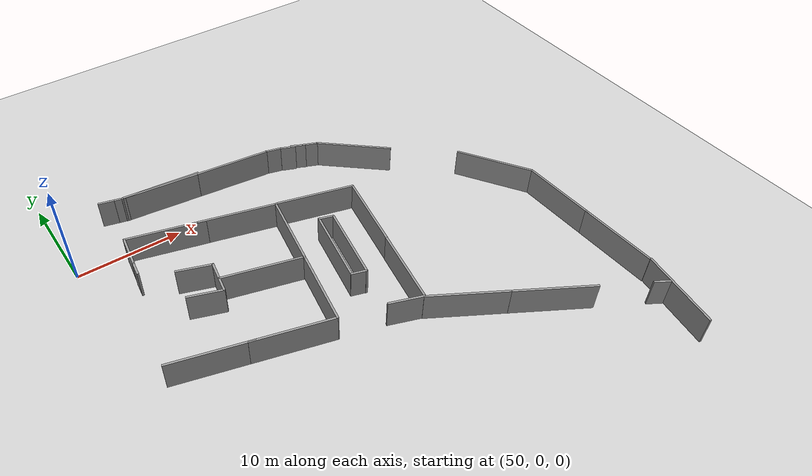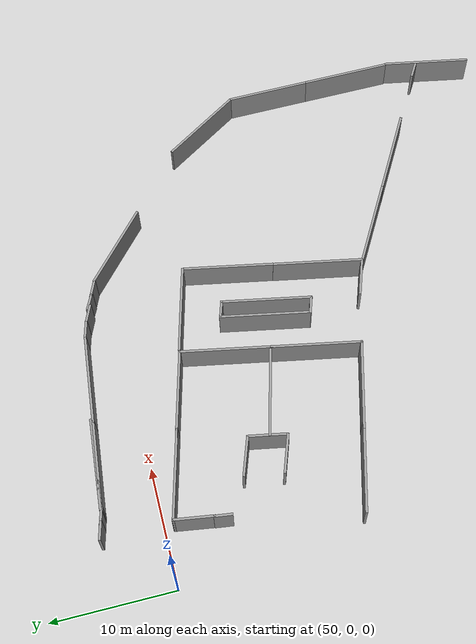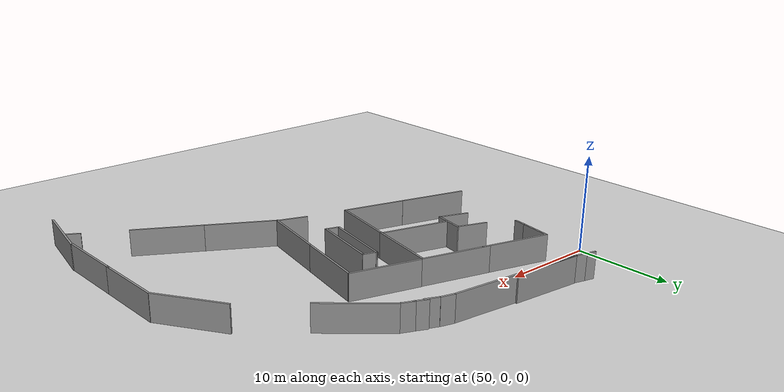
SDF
<sdf version="1.7">
 <world name="default">
  <model name="ground_plane">
   <static>1</static>
   <link name="link">
    <collision name="collision">
     <geometry><plane><normal>0 0 1</normal><size>100 100</size></plane></geometry>
     <surface>
      <contact><collide_bitmask>65535</collide_bitmask></contact>
      <friction><ode><mu>100</mu><mu2>50</mu2></ode></friction>
     </surface>
    </collision>
    <visual name="visual">
     <cast_shadows>0</cast_shadows>
     <geometry><plane><normal>0 0 1</normal><size>100 100</size></plane></geometry>
     <material>
      <script><uri>file://media/materials/scripts/gazebo.material</uri><name>Gazebo/Grey</name></script>
     </material>
    </visual>
   </link>
  </model>
  <model name="grey_wall_0_clone_0_clone_clone_clone_0_clone_clone_0_clone_2_clone_clone_clone_0_clone_4_clone">
   <static>1</static>
   <link name="link">
    <pose>0 0 1.4 0 -0 0</pose>
    <collision name="collision"><geometry><box><size>7.5 0.2 2.8</size></box></geometry></collision>
    <visual name="visual">
     <cast_shadows>0</cast_shadows>
     <geometry><box><size>7.5 0.2 2.8</size></box></geometry>
     <material>
      <script>
       <uri>model://grey_wall/materials/scripts</uri>
       <uri>model://grey_wall/materials/textures</uri>
       <name>vrc/grey_wall</name>
      </script>
     </material>
    </visual>
   </link>
   <pose>90.8186 -32.1764 0 0 -0 1.38847</pose>
  </model>
  <model name="grey_wall_0_clone_0_clone_clone_clone_0_clone_clone_0_clone_2_clone_clone_clone_0_clone_4_clone_clone_clone">
   <static>1</static>
   <link name="link">
    <pose>0 0 1.4 0 -0 0</pose>
    <collision name="collision"><geometry><box><size>7.5 0.2 2.8</size></box></geometry></collision>
    <visual name="visual">
     <cast_shadows>0</cast_shadows>
     <geometry><box><size>7.5 0.2 2.8</size></box></geometry>
     <material>
      <script>
       <uri>model://grey_wall/materials/scripts</uri>
       <uri>model://grey_wall/materials/textures</uri>
       <name>vrc/grey_wall</name>
      </script>
     </material>
    </visual>
   </link>
   <pose>91.2255 -17.7206 0 0 -0 1.59016</pose>
  </model>
  <model name="grey_wall_0_clone_0_clone_clone_clone_0_clone_clone_0_clone_2_clone_clone_clone_0_clone_4_clone_clone_clone_clone">
   <static>1</static>
   <link name="link">
    <pose>0 0 1.4 0 -0 0</pose>
    <collision name="collision"><geometry><box><size>7.5 0.2 2.8</size></box></geometry></collision>
    <visual name="visual">
     <cast_shadows>0</cast_shadows>
     <geometry><box><size>7.5 0.2 2.8</size></box></geometry>
     <material>
      <script>
       <uri>model://grey_wall/materials/scripts</uri>
       <uri>model://grey_wall/materials/textures</uri>
       <name>vrc/grey_wall</name>
      </script>
     </material>
    </visual>
   </link>
   <pose>89.0832 -10.9202 0 0 -0 2.15439</pose>
  </model>
  <model name="grey_wall_clone_3_clone_0_clone_1">
   <static>1</static>
   <link name="link">
    <pose>0 0 1.4 0 -0 0</pose>
    <collision name="collision"><geometry><box><size>7.5 0.2 2.8</size></box></geometry></collision>
    <visual name="visual">
     <cast_shadows>0</cast_shadows>
     <geometry><box><size>7.5 0.2 2.8</size></box></geometry>
     <material>
      <script>
       <uri>model://grey_wall/materials/scripts</uri>
       <uri>model://grey_wall/materials/textures</uri>
       <name>vrc/grey_wall</name>
      </script>
     </material>
    </visual>
   </link>
   <pose>60.3633 3.96915 0 0 0 -0.103387</pose>
  </model>
  <model name="grey_wall_0_clone_0_clone_clone_clone_0_clone_clone_0_clone_2_clone_clone_clone_0_clone_4_clone_clone_clone_clone_0">
   <static>1</static>
   <link name="link">
    <pose>0 0 1.4 0 -0 0</pose>
    <collision name="collision"><geometry><box><size>7.5 0.2 2.8</size></box></geometry></collision>
    <visual name="visual">
     <cast_shadows>0</cast_shadows>
     <geometry><box><size>7.5 0.2 2.8</size></box></geometry>
     <material>
      <script>
       <uri>model://grey_wall/materials/scripts</uri>
       <uri>model://grey_wall/materials/textures</uri>
       <name>vrc/grey_wall</name>
      </script>
     </material>
    </visual>
   </link>
   <pose>91.359 -24.7823 0 0 -0 1.59016</pose>
  </model>
  <model name="grey_wall_clone_3_clone_0_clone_1_clone">
   <static>1</static>
   <link name="link">
    <pose>0 0 1.4 0 -0 0</pose>
    <collision name="collision"><geometry><box><size>7.5 0.2 2.8</size></box></geometry></collision>
    <visual name="visual">
     <cast_shadows>0</cast_shadows>
     <geometry><box><size>7.5 0.2 2.8</size></box></geometry>
     <material>
      <script>
       <uri>model://grey_wall/materials/scripts</uri>
       <uri>model://grey_wall/materials/textures</uri>
       <name>vrc/grey_wall</name>
      </script>
     </material>
    </visual>
   </link>
   <pose>67.6162 3.22221 0 0 0 -0.103387</pose>
  </model>
  <model name="half_grey_wall_clone_clone_clone_0_clone_clone_0_clone_clone_0_clone_0_clone_9_clone_0_clone_clone_clone_3_clone_clone_0_clone">
   <link name="link">
    <pose>0 0 1.4 0 -0 0</pose>
    <inertial>
     <mass>1</mass>
     <inertia><ixx>1</ixx><ixy>0</ixy><ixz>0</ixz><iyy>1</iyy><iyz>0</iyz><izz>1</izz></inertia>
    </inertial>
    <visual name="visual">
     <cast_shadows>0</cast_shadows>
     <geometry><box><size>1.5 0.2 2.8</size></box></geometry>
     <material>
      <script>
       <uri>model://grey_wall/materials/scripts</uri>
       <uri>model://grey_wall/materials/textures</uri>
       <name>vrc/grey_wall</name>
      </script>
      <shader type="pixel"><normal_map>__default__</normal_map></shader>
      <ambient>1 1 1 1</ambient>
      <diffuse>1 1 1 1</diffuse>
      <specular>0 0 0 1</specular>
      <emissive>0 0 0 1</emissive>
     </material>
    </visual>
    <collision name="collision">
     <geometry><box><size>1.5 0.2 2.8</size></box></geometry>
     <surface>
      <friction>
       <ode><mu>1</mu><mu2>1</mu2><fdir1>0 0 0</fdir1><slip1>0</slip1><slip2>0</slip2></ode>
       <torsional>
        <coefficient>1</coefficient>
        <patch_radius>0</patch_radius>
        <surface_radius>0</surface_radius>
        <use_patch_radius>1</use_patch_radius>
        <ode><slip>0</slip></ode>
       </torsional>
      </friction>
      <bounce><restitution_coefficient>0</restitution_coefficient><threshold>1e+06</threshold></bounce>
      <contact>
       <collide_without_contact>0</collide_without_contact>
       <collide_without_contact_bitmask>1</collide_without_contact_bitmask>
       <collide_bitmask>1</collide_bitmask>
       <ode>
        <soft_cfm>0</soft_cfm>
        <soft_erp>0.2</soft_erp>
        <kp>1e+13</kp>
        <kd>1</kd>
        <max_vel>0.01</max_vel>
        <min_depth>0</min_depth>
       </ode>
       <bullet>
        <split_impulse>1</split_impulse>
        <split_impulse_penetration_threshold>-0.01</split_impulse_penetration_threshold>
        <soft_cfm>0</soft_cfm>
        <soft_erp>0.2</soft_erp>
        <kp>1e+13</kp>
        <kd>1</kd>
       </bullet>
      </contact>
     </surface>
    </collision>
   </link>
   <static>1</static>
   <pose>72.0199 2.66243 0 0 -0 2.88811</pose>
  </model>
  <model name="half_grey_wall_clone_clone_clone_0_clone_clone_0_clone_clone_0_clone_0_clone_9_clone_0_clone_clone_clone_3_clone_clone_0_clone_0">
   <link name="link">
    <pose>0 0 1.4 0 -0 0</pose>
    <inertial>
     <mass>1</mass>
     <inertia><ixx>1</ixx><ixy>0</ixy><ixz>0</ixz><iyy>1</iyy><iyz>0</iyz><izz>1</izz></inertia>
    </inertial>
    <visual name="visual">
     <cast_shadows>0</cast_shadows>
     <geometry><box><size>1.5 0.2 2.8</size></box></geometry>
     <material>
      <script>
       <uri>model://grey_wall/materials/scripts</uri>
       <uri>model://grey_wall/materials/textures</uri>
       <name>vrc/grey_wall</name>
      </script>
      <shader type="pixel"><normal_map>__default__</normal_map></shader>
      <ambient>1 1 1 1</ambient>
      <diffuse>1 1 1 1</diffuse>
      <specular>0 0 0 1</specular>
      <emissive>0 0 0 1</emissive>
     </material>
    </visual>
    <collision name="collision">
     <geometry><box><size>1.5 0.2 2.8</size></box></geometry>
     <surface>
      <friction>
       <ode><mu>1</mu><mu2>1</mu2><fdir1>0 0 0</fdir1><slip1>0</slip1><slip2>0</slip2></ode>
       <torsional>
        <coefficient>1</coefficient>
        <patch_radius>0</patch_radius>
        <surface_radius>0</surface_radius>
        <use_patch_radius>1</use_patch_radius>
        <ode><slip>0</slip></ode>
       </torsional>
      </friction>
      <bounce><restitution_coefficient>0</restitution_coefficient><threshold>1e+06</threshold></bounce>
      <contact>
       <collide_without_contact>0</collide_without_contact>
       <collide_without_contact_bitmask>1</collide_without_contact_bitmask>
       <collide_bitmask>1</collide_bitmask>
       <ode>
        <soft_cfm>0</soft_cfm>
        <soft_erp>0.2</soft_erp>
        <kp>1e+13</kp>
        <kd>1</kd>
        <max_vel>0.01</max_vel>
        <min_depth>0</min_depth>
       </ode>
       <bullet>
        <split_impulse>1</split_impulse>
        <split_impulse_penetration_threshold>-0.01</split_impulse_penetration_threshold>
        <soft_cfm>0</soft_cfm>
        <soft_erp>0.2</soft_erp>
        <kp>1e+13</kp>
        <kd>1</kd>
       </bullet>
      </contact>
     </surface>
    </collision>
   </link>
   <static>1</static>
   <pose>73.4243 2.17542 0 0 -0 2.7466</pose>
  </model>
  <model name="half_grey_wall_clone_clone_clone_0_clone_clone_0_clone_clone_0_clone_0_clone_9_clone_0_clone_clone_clone_3_clone_clone_0_clone_0_clone">
   <link name="link">
    <pose>0 0 1.4 0 -0 0</pose>
    <inertial>
     <mass>1</mass>
     <inertia><ixx>1</ixx><ixy>0</ixy><ixz>0</ixz><iyy>1</iyy><iyz>0</iyz><izz>1</izz></inertia>
    </inertial>
    <visual name="visual">
     <cast_shadows>0</cast_shadows>
     <geometry><box><size>1.5 0.2 2.8</size></box></geometry>
     <material>
      <script>
       <uri>model://grey_wall/materials/scripts</uri>
       <uri>model://grey_wall/materials/textures</uri>
       <name>vrc/grey_wall</name>
      </script>
      <shader type="pixel"><normal_map>__default__</normal_map></shader>
      <ambient>1 1 1 1</ambient>
      <diffuse>1 1 1 1</diffuse>
      <specular>0 0 0 1</specular>
      <emissive>0 0 0 1</emissive>
     </material>
    </visual>
    <collision name="collision">
     <geometry><box><size>1.5 0.2 2.8</size></box></geometry>
     <surface>
      <friction>
       <ode><mu>1</mu><mu2>1</mu2><fdir1>0 0 0</fdir1><slip1>0</slip1><slip2>0</slip2></ode>
       <torsional>
        <coefficient>1</coefficient>
        <patch_radius>0</patch_radius>
        <surface_radius>0</surface_radius>
        <use_patch_radius>1</use_patch_radius>
        <ode><slip>0</slip></ode>
       </torsional>
      </friction>
      <bounce><restitution_coefficient>0</restitution_coefficient><threshold>1e+06</threshold></bounce>
      <contact>
       <collide_without_contact>0</collide_without_contact>
       <collide_without_contact_bitmask>1</collide_without_contact_bitmask>
       <collide_bitmask>1</collide_bitmask>
       <ode>
        <soft_cfm>0</soft_cfm>
        <soft_erp>0.2</soft_erp>
        <kp>1e+13</kp>
        <kd>1</kd>
        <max_vel>0.01</max_vel>
        <min_depth>0</min_depth>
       </ode>
       <bullet>
        <split_impulse>1</split_impulse>
        <split_impulse_penetration_threshold>-0.01</split_impulse_penetration_threshold>
        <soft_cfm>0</soft_cfm>
        <soft_erp>0.2</soft_erp>
        <kp>1e+13</kp>
        <kd>1</kd>
       </bullet>
      </contact>
     </surface>
    </collision>
   </link>
   <static>1</static>
   <pose>75.5411 1.41803 0 0 -0 2.7466</pose>
  </model>
  <model name="half_grey_wall_clone_clone_clone_0_clone_clone_0_clone_clone_0_clone_0_clone_9_clone_0_clone_2_clone_1">
   <link name="link">
    <pose>0 0 1.4 0 -0 0</pose>
    <inertial>
     <mass>1</mass>
     <inertia><ixx>1</ixx><ixy>0</ixy><ixz>0</ixz><iyy>1</iyy><iyz>0</iyz><izz>1</izz></inertia>
    </inertial>
    <visual name="visual">
     <cast_shadows>0</cast_shadows>
     <geometry><box><size>1.5 0.2 2.8</size></box></geometry>
     <material>
      <script>
       <uri>model://grey_wall/materials/scripts</uri>
       <uri>model://grey_wall/materials/textures</uri>
       <name>vrc/grey_wall</name>
      </script>
      <shader type="pixel"><normal_map>__default__</normal_map></shader>
      <ambient>1 1 1 1</ambient>
      <diffuse>1 1 1 1</diffuse>
      <specular>0 0 0 1</specular>
      <emissive>0 0 0 1</emissive>
     </material>
    </visual>
    <collision name="collision">
     <geometry><box><size>1.5 0.2 2.8</size></box></geometry>
     <surface>
      <friction>
       <ode><mu>1</mu><mu2>1</mu2><fdir1>0 0 0</fdir1><slip1>0</slip1><slip2>0</slip2></ode>
       <torsional>
        <coefficient>1</coefficient>
        <patch_radius>0</patch_radius>
        <surface_radius>0</surface_radius>
        <use_patch_radius>1</use_patch_radius>
        <ode><slip>0</slip></ode>
       </torsional>
      </friction>
      <bounce><restitution_coefficient>0</restitution_coefficient><threshold>1e+06</threshold></bounce>
      <contact>
       <collide_without_contact>0</collide_without_contact>
       <collide_without_contact_bitmask>1</collide_without_contact_bitmask>
       <collide_bitmask>1</collide_bitmask>
       <ode>
        <soft_cfm>0</soft_cfm>
        <soft_erp>0.2</soft_erp>
        <kp>1e+13</kp>
        <kd>1</kd>
        <max_vel>0.01</max_vel>
        <min_depth>0</min_depth>
       </ode>
       <bullet>
        <split_impulse>1</split_impulse>
        <split_impulse_penetration_threshold>-0.01</split_impulse_penetration_threshold>
        <soft_cfm>0</soft_cfm>
        <soft_erp>0.2</soft_erp>
        <kp>1e+13</kp>
        <kd>1</kd>
       </bullet>
      </contact>
     </surface>
    </collision>
   </link>
   <static>1</static>
   <pose>55.2455 4.73221 0 0 -0 2.88811</pose>
  </model>
  <model name="half_grey_wall_clone_clone_clone_0_clone_clone_0_clone_clone_0_clone_0_clone_9_clone_0_clone_2_clone_2">
   <link name="link">
    <pose>0 0 1.4 0 -0 0</pose>
    <inertial>
     <mass>1</mass>
     <inertia><ixx>1</ixx><ixy>0</ixy><ixz>0</ixz><iyy>1</iyy><iyz>0</iyz><izz>1</izz></inertia>
    </inertial>
    <visual name="visual">
     <cast_shadows>0</cast_shadows>
     <geometry><box><size>1.5 0.2 2.8</size></box></geometry>
     <material>
      <script>
       <uri>model://grey_wall/materials/scripts</uri>
       <uri>model://grey_wall/materials/textures</uri>
       <name>vrc/grey_wall</name>
      </script>
      <shader type="pixel"><normal_map>__default__</normal_map></shader>
      <ambient>1 1 1 1</ambient>
      <diffuse>1 1 1 1</diffuse>
      <specular>0 0 0 1</specular>
      <emissive>0 0 0 1</emissive>
     </material>
    </visual>
    <collision name="collision">
     <geometry><box><size>1.5 0.2 2.8</size></box></geometry>
     <surface>
      <friction>
       <ode><mu>1</mu><mu2>1</mu2><fdir1>0 0 0</fdir1><slip1>0</slip1><slip2>0</slip2></ode>
       <torsional>
        <coefficient>1</coefficient>
        <patch_radius>0</patch_radius>
        <surface_radius>0</surface_radius>
        <use_patch_radius>1</use_patch_radius>
        <ode><slip>0</slip></ode>
       </torsional>
      </friction>
      <bounce><restitution_coefficient>0</restitution_coefficient><threshold>1e+06</threshold></bounce>
      <contact>
       <collide_without_contact>0</collide_without_contact>
       <collide_without_contact_bitmask>1</collide_without_contact_bitmask>
       <collide_bitmask>1</collide_bitmask>
       <ode>
        <soft_cfm>0</soft_cfm>
        <soft_erp>0.2</soft_erp>
        <kp>1e+13</kp>
        <kd>1</kd>
        <max_vel>0.01</max_vel>
        <min_depth>0</min_depth>
       </ode>
       <bullet>
        <split_impulse>1</split_impulse>
        <split_impulse_penetration_threshold>-0.01</split_impulse_penetration_threshold>
        <soft_cfm>0</soft_cfm>
        <soft_erp>0.2</soft_erp>
        <kp>1e+13</kp>
        <kd>1</kd>
       </bullet>
      </contact>
     </surface>
    </collision>
   </link>
   <static>1</static>
   <pose>56.2905 4.46986 0 0 -0 2.88811</pose>
  </model>
  <model name="grey_wall_clone_3_clone_0_clone_1_clone_0_clone_clone_0_clone">
   <static>1</static>
   <link name="link">
    <pose>0 0 1.4 0 -0 0</pose>
    <collision name="collision"><geometry><box><size>7.5 0.2 2.8</size></box></geometry></collision>
    <visual name="visual">
     <cast_shadows>0</cast_shadows>
     <geometry><box><size>7.5 0.2 2.8</size></box></geometry>
     <material>
      <script>
       <uri>model://grey_wall/materials/scripts</uri>
       <uri>model://grey_wall/materials/textures</uri>
       <name>vrc/grey_wall</name>
      </script>
     </material>
    </visual>
   </link>
   <pose>58.2105 -1.7071 0 0 0 -0.25602</pose>
  </model>
  <model name="half_grey_wall_clone_clone_0_clone_clone_clone_clone_0_clone_0_clone_clone_1_clone_clone_clone_4_clone_clone">
   <link name="link">
    <pose>0 0 1.4 0 -0 0</pose>
    <inertial>
     <mass>1</mass>
     <inertia><ixx>1</ixx><ixy>0</ixy><ixz>0</ixz><iyy>1</iyy><iyz>0</iyz><izz>1</izz></inertia>
    </inertial>
    <visual name="visual">
     <cast_shadows>0</cast_shadows>
     <geometry><box><size>3.3 0.2 2.8</size></box></geometry>
     <material>
      <script>
       <uri>model://grey_wall/materials/scripts</uri>
       <uri>model://grey_wall/materials/textures</uri>
       <name>vrc/grey_wall</name>
      </script>
      <shader type="pixel"><normal_map>__default__</normal_map></shader>
      <ambient>1 1 1 1</ambient>
      <diffuse>1 1 1 1</diffuse>
      <specular>0 0 0 1</specular>
      <emissive>0 0 0 1</emissive>
     </material>
    </visual>
    <collision name="collision">
     <geometry><box><size>3.3 0.2 2.8</size></box></geometry>
     <surface>
      <friction>
       <ode><mu>1</mu><mu2>1</mu2><fdir1>0 0 0</fdir1><slip1>0</slip1><slip2>0</slip2></ode>
       <torsional>
        <coefficient>1</coefficient>
        <patch_radius>0</patch_radius>
        <surface_radius>0</surface_radius>
        <use_patch_radius>1</use_patch_radius>
        <ode><slip>0</slip></ode>
       </torsional>
      </friction>
      <bounce><restitution_coefficient>0</restitution_coefficient><threshold>1e+06</threshold></bounce>
      <contact>
       <collide_without_contact>0</collide_without_contact>
       <collide_without_contact_bitmask>1</collide_without_contact_bitmask>
       <collide_bitmask>1</collide_bitmask>
       <ode>
        <soft_cfm>0</soft_cfm>
        <soft_erp>0.2</soft_erp>
        <kp>1e+13</kp>
        <kd>1</kd>
        <max_vel>0.01</max_vel>
        <min_depth>0</min_depth>
       </ode>
       <bullet>
        <split_impulse>1</split_impulse>
        <split_impulse_penetration_threshold>-0.01</split_impulse_penetration_threshold>
        <soft_cfm>0</soft_cfm>
        <soft_erp>0.2</soft_erp>
        <kp>1e+13</kp>
        <kd>1</kd>
       </bullet>
      </contact>
     </surface>
    </collision>
   </link>
   <static>1</static>
   <pose>54.4482 -2.34776 0 0 0 -1.72081</pose>
  </model>
  <model name="grey_wall_clone_3_clone_0_clone_1_clone_0_clone_clone_0_clone_clone">
   <static>1</static>
   <link name="link">
    <pose>0 0 1.4 0 -0 0</pose>
    <collision name="collision"><geometry><box><size>7.5 0.2 2.8</size></box></geometry></collision>
    <visual name="visual">
     <cast_shadows>0</cast_shadows>
     <geometry><box><size>7.5 0.2 2.8</size></box></geometry>
     <material>
      <script>
       <uri>model://grey_wall/materials/scripts</uri>
       <uri>model://grey_wall/materials/textures</uri>
       <name>vrc/grey_wall</name>
      </script>
     </material>
    </visual>
   </link>
   <pose>64.694 -3.38854 0 0 0 -0.25602</pose>
  </model>
  <model name="grey_wall_0_clone_clone_clone_0_clone_clone_2_clone_1_clone_2_clone_1_clone_clone_clone">
   <static>1</static>
   <link name="link">
    <pose>0 0 1.4 0 -0 0</pose>
    <collision name="collision"><geometry><box><size>7.5 0.2 2.8</size></box></geometry></collision>
    <visual name="visual">
     <cast_shadows>0</cast_shadows>
     <geometry><box><size>7.5 0.2 2.8</size></box></geometry>
     <material>
      <script>
       <uri>model://grey_wall/materials/scripts</uri>
       <uri>model://grey_wall/materials/textures</uri>
       <name>vrc/grey_wall</name>
      </script>
     </material>
    </visual>
   </link>
   <pose>67.4799 -8.00441 0 0 -0 1.38237</pose>
  </model>
  <model name="grey_wall_0_clone_clone_clone_0_clone_clone_2_clone_1_clone_2_clone_1_clone_clone_clone_0">
   <static>1</static>
   <link name="link">
    <pose>0 0 1.4 0 -0 0</pose>
    <collision name="collision"><geometry><box><size>7.5 0.2 2.8</size></box></geometry></collision>
    <visual name="visual">
     <cast_shadows>0</cast_shadows>
     <geometry><box><size>7.5 0.2 2.8</size></box></geometry>
     <material>
      <script>
       <uri>model://grey_wall/materials/scripts</uri>
       <uri>model://grey_wall/materials/textures</uri>
       <name>vrc/grey_wall</name>
      </script>
     </material>
    </visual>
   </link>
   <pose>66.1158 -15.1386 0 0 -0 1.38237</pose>
  </model>
  <model name="grey_wall_clone_3_clone_0_clone_1_clone_0_clone_clone_0_clone_clone_0">
   <static>1</static>
   <link name="link">
    <pose>0 0 1.4 0 -0 0</pose>
    <collision name="collision"><geometry><box><size>7.5 0.2 2.8</size></box></geometry></collision>
    <visual name="visual">
     <cast_shadows>0</cast_shadows>
     <geometry><box><size>7.5 0.2 2.8</size></box></geometry>
     <material>
      <script>
       <uri>model://grey_wall/materials/scripts</uri>
       <uri>model://grey_wall/materials/textures</uri>
       <name>vrc/grey_wall</name>
      </script>
     </material>
    </visual>
   </link>
   <pose>61.814 -17.7979 0 0 0 -0.25602</pose>
  </model>
  <model name="grey_wall_clone_3_clone_0_clone_1_clone_0_clone_clone_0_clone_clone_1">
   <static>1</static>
   <link name="link">
    <pose>0 0 1.4 0 -0 0</pose>
    <collision name="collision"><geometry><box><size>7.5 0.2 2.8</size></box></geometry></collision>
    <visual name="visual">
     <cast_shadows>0</cast_shadows>
     <geometry><box><size>7.5 0.2 2.8</size></box></geometry>
     <material>
      <script>
       <uri>model://grey_wall/materials/scripts</uri>
       <uri>model://grey_wall/materials/textures</uri>
       <name>vrc/grey_wall</name>
      </script>
     </material>
    </visual>
   </link>
   <pose>55.22 -16.0677 0 0 0 -0.25602</pose>
  </model>
  <model name="grey_wall_clone_3_clone_0_clone_1_clone_0_clone_clone_0_clone_clone_2">
   <static>1</static>
   <link name="link">
    <pose>0 0 1.4 0 -0 0</pose>
    <collision name="collision"><geometry><box><size>7.5 0.2 2.8</size></box></geometry></collision>
    <visual name="visual">
     <cast_shadows>0</cast_shadows>
     <geometry><box><size>7.5 0.2 2.8</size></box></geometry>
     <material>
      <script>
       <uri>model://grey_wall/materials/scripts</uri>
       <uri>model://grey_wall/materials/textures</uri>
       <name>vrc/grey_wall</name>
      </script>
     </material>
    </visual>
   </link>
   <pose>63.0634 -10.5062 0 0 0 -0.25602</pose>
  </model>
  <model name="half_grey_wall_clone_clone_0_clone_clone_clone_clone_0_clone_0_clone_clone_1_clone_clone_clone_4_clone_clone_clone_0">
   <link name="link">
    <pose>0 0 1.4 0 -0 0</pose>
    <inertial>
     <mass>1</mass>
     <inertia><ixx>1</ixx><ixy>0</ixy><ixz>0</ixz><iyy>1</iyy><iyz>0</iyz><izz>1</izz></inertia>
    </inertial>
    <visual name="visual">
     <cast_shadows>0</cast_shadows>
     <geometry><box><size>3.3 0.2 2.8</size></box></geometry>
     <material>
      <script>
       <uri>model://grey_wall/materials/scripts</uri>
       <uri>model://grey_wall/materials/textures</uri>
       <name>vrc/grey_wall</name>
      </script>
      <shader type="pixel"><normal_map>__default__</normal_map></shader>
      <ambient>1 1 1 1</ambient>
      <diffuse>1 1 1 1</diffuse>
      <specular>0 0 0 1</specular>
      <emissive>0 0 0 1</emissive>
     </material>
    </visual>
    <collision name="collision">
     <geometry><box><size>3.3 0.2 2.8</size></box></geometry>
     <surface>
      <friction>
       <ode><mu>1</mu><mu2>1</mu2><fdir1>0 0 0</fdir1><slip1>0</slip1><slip2>0</slip2></ode>
       <torsional>
        <coefficient>1</coefficient>
        <patch_radius>0</patch_radius>
        <surface_radius>0</surface_radius>
        <use_patch_radius>1</use_patch_radius>
        <ode><slip>0</slip></ode>
       </torsional>
      </friction>
      <bounce><restitution_coefficient>0</restitution_coefficient><threshold>1e+06</threshold></bounce>
      <contact>
       <collide_without_contact>0</collide_without_contact>
       <collide_without_contact_bitmask>1</collide_without_contact_bitmask>
       <collide_bitmask>1</collide_bitmask>
       <ode>
        <soft_cfm>0</soft_cfm>
        <soft_erp>0.2</soft_erp>
        <kp>1e+13</kp>
        <kd>1</kd>
        <max_vel>0.01</max_vel>
        <min_depth>0</min_depth>
       </ode>
       <bullet>
        <split_impulse>1</split_impulse>
        <split_impulse_penetration_threshold>-0.01</split_impulse_penetration_threshold>
        <soft_cfm>0</soft_cfm>
        <soft_erp>0.2</soft_erp>
        <kp>1e+13</kp>
        <kd>1</kd>
       </bullet>
      </contact>
     </surface>
    </collision>
   </link>
   <static>1</static>
   <pose>59.5325 -9.37491 0 0 0 -1.75358</pose>
  </model>
  <model name="half_grey_wall_clone_clone_clone_0_clone_clone_0_clone_clone_0_clone_0_clone_13_clone_clone_0_clone_clone_clone">
   <link name="link">
    <pose>0 0 1.4 0 -0 0</pose>
    <inertial>
     <mass>1</mass>
     <inertia><ixx>1</ixx><ixy>0</ixy><ixz>0</ixz><iyy>1</iyy><iyz>0</iyz><izz>1</izz></inertia>
    </inertial>
    <visual name="visual">
     <cast_shadows>0</cast_shadows>
     <geometry><box><size>1.5 0.2 2.8</size></box></geometry>
     <material>
      <script>
       <uri>model://grey_wall/materials/scripts</uri>
       <uri>model://grey_wall/materials/textures</uri>
       <name>vrc/grey_wall</name>
      </script>
      <shader type="pixel"><normal_map>__default__</normal_map></shader>
      <ambient>1 1 1 1</ambient>
      <diffuse>1 1 1 1</diffuse>
      <specular>0 0 0 1</specular>
      <emissive>0 0 0 1</emissive>
     </material>
    </visual>
    <collision name="collision">
     <geometry><box><size>1.5 0.2 2.8</size></box></geometry>
     <surface>
      <friction>
       <ode><mu>1</mu><mu2>1</mu2><fdir1>0 0 0</fdir1><slip1>0</slip1><slip2>0</slip2></ode>
       <torsional>
        <coefficient>1</coefficient>
        <patch_radius>0</patch_radius>
        <surface_radius>0</surface_radius>
        <use_patch_radius>1</use_patch_radius>
        <ode><slip>0</slip></ode>
       </torsional>
      </friction>
      <bounce><restitution_coefficient>0</restitution_coefficient><threshold>1e+06</threshold></bounce>
      <contact>
       <collide_without_contact>0</collide_without_contact>
       <collide_without_contact_bitmask>1</collide_without_contact_bitmask>
       <collide_bitmask>1</collide_bitmask>
       <ode>
        <soft_cfm>0</soft_cfm>
        <soft_erp>0.2</soft_erp>
        <kp>1e+13</kp>
        <kd>1</kd>
        <max_vel>0.01</max_vel>
        <min_depth>0</min_depth>
       </ode>
       <bullet>
        <split_impulse>1</split_impulse>
        <split_impulse_penetration_threshold>-0.01</split_impulse_penetration_threshold>
        <soft_cfm>0</soft_cfm>
        <soft_erp>0.2</soft_erp>
        <kp>1e+13</kp>
        <kd>1</kd>
       </bullet>
      </contact>
     </surface>
    </collision>
   </link>
   <static>1</static>
   <pose>54.1033 -4.54702 0 0 -0 1.4396</pose>
  </model>
  <model name="half_grey_wall_clone_clone_0_clone_clone_clone_clone_0_clone_2_clone_clone_0_clone_clone_1_clone_1_clone">
   <link name="link">
    <pose>0 0 1.4 0 -0 0</pose>
    <inertial>
     <mass>1</mass>
     <inertia><ixx>1</ixx><ixy>0</ixy><ixz>0</ixz><iyy>1</iyy><iyz>0</iyz><izz>1</izz></inertia>
    </inertial>
    <visual name="visual">
     <cast_shadows>0</cast_shadows>
     <geometry><box><size>3.3 0.2 2.8</size></box></geometry>
     <material>
      <script>
       <uri>model://grey_wall/materials/scripts</uri>
       <uri>model://grey_wall/materials/textures</uri>
       <name>vrc/grey_wall</name>
      </script>
      <shader type="pixel"><normal_map>__default__</normal_map></shader>
      <ambient>1 1 1 1</ambient>
      <diffuse>1 1 1 1</diffuse>
      <specular>0 0 0 1</specular>
      <emissive>0 0 0 1</emissive>
     </material>
    </visual>
    <collision name="collision">
     <geometry><box><size>3.3 0.2 2.8</size></box></geometry>
     <surface>
      <friction>
       <ode><mu>1</mu><mu2>1</mu2><fdir1>0 0 0</fdir1><slip1>0</slip1><slip2>0</slip2></ode>
       <torsional>
        <coefficient>1</coefficient>
        <patch_radius>0</patch_radius>
        <surface_radius>0</surface_radius>
        <use_patch_radius>1</use_patch_radius>
        <ode><slip>0</slip></ode>
       </torsional>
      </friction>
      <bounce><restitution_coefficient>0</restitution_coefficient><threshold>1e+06</threshold></bounce>
      <contact>
       <collide_without_contact>0</collide_without_contact>
       <collide_without_contact_bitmask>1</collide_without_contact_bitmask>
       <collide_bitmask>1</collide_bitmask>
       <ode>
        <soft_cfm>0</soft_cfm>
        <soft_erp>0.2</soft_erp>
        <kp>1e+13</kp>
        <kd>1</kd>
        <max_vel>0.01</max_vel>
        <min_depth>0</min_depth>
       </ode>
       <bullet>
        <split_impulse>1</split_impulse>
        <split_impulse_penetration_threshold>-0.01</split_impulse_penetration_threshold>
        <soft_cfm>0</soft_cfm>
        <soft_erp>0.2</soft_erp>
        <kp>1e+13</kp>
        <kd>1</kd>
       </bullet>
      </contact>
     </surface>
    </collision>
   </link>
   <static>1</static>
   <pose>58.256 -7.31692 -0 0 -0 2.80915</pose>
  </model>
  <model name="half_grey_wall_clone_clone_0_clone_clone_clone_clone_0_clone_2_clone_clone_0_clone_clone_1_clone_1_clone_0">
   <link name="link">
    <pose>0 0 1.4 0 -0 0</pose>
    <inertial>
     <mass>1</mass>
     <inertia><ixx>1</ixx><ixy>0</ixy><ixz>0</ixz><iyy>1</iyy><iyz>0</iyz><izz>1</izz></inertia>
    </inertial>
    <visual name="visual">
     <cast_shadows>0</cast_shadows>
     <geometry><box><size>3.3 0.2 2.8</size></box></geometry>
     <material>
      <script>
       <uri>model://grey_wall/materials/scripts</uri>
       <uri>model://grey_wall/materials/textures</uri>
       <name>vrc/grey_wall</name>
      </script>
      <shader type="pixel"><normal_map>__default__</normal_map></shader>
      <ambient>1 1 1 1</ambient>
      <diffuse>1 1 1 1</diffuse>
      <specular>0 0 0 1</specular>
      <emissive>0 0 0 1</emissive>
     </material>
    </visual>
    <collision name="collision">
     <geometry><box><size>3.3 0.2 2.8</size></box></geometry>
     <surface>
      <friction>
       <ode><mu>1</mu><mu2>1</mu2><fdir1>0 0 0</fdir1><slip1>0</slip1><slip2>0</slip2></ode>
       <torsional>
        <coefficient>1</coefficient>
        <patch_radius>0</patch_radius>
        <surface_radius>0</surface_radius>
        <use_patch_radius>1</use_patch_radius>
        <ode><slip>0</slip></ode>
       </torsional>
      </friction>
      <bounce><restitution_coefficient>0</restitution_coefficient><threshold>1e+06</threshold></bounce>
      <contact>
       <collide_without_contact>0</collide_without_contact>
       <collide_without_contact_bitmask>1</collide_without_contact_bitmask>
       <collide_bitmask>1</collide_bitmask>
       <ode>
        <soft_cfm>0</soft_cfm>
        <soft_erp>0.2</soft_erp>
        <kp>1e+13</kp>
        <kd>1</kd>
        <max_vel>0.01</max_vel>
        <min_depth>0</min_depth>
       </ode>
       <bullet>
        <split_impulse>1</split_impulse>
        <split_impulse_penetration_threshold>-0.01</split_impulse_penetration_threshold>
        <soft_cfm>0</soft_cfm>
        <soft_erp>0.2</soft_erp>
        <kp>1e+13</kp>
        <kd>1</kd>
       </bullet>
      </contact>
     </surface>
    </collision>
   </link>
   <static>1</static>
   <pose>57.7335 -10.448 -0 0 -0 2.80915</pose>
  </model>
  <model name="grey_wall_clone_3_clone_0_clone_1_clone_0_clone_clone_0_clone_clone_clone">
   <static>1</static>
   <link name="link">
    <pose>0 0 1.4 0 -0 0</pose>
    <collision name="collision"><geometry><box><size>7.5 0.2 2.8</size></box></geometry></collision>
    <visual name="visual">
     <cast_shadows>0</cast_shadows>
     <geometry><box><size>7.5 0.2 2.8</size></box></geometry>
     <material>
      <script>
       <uri>model://grey_wall/materials/scripts</uri>
       <uri>model://grey_wall/materials/textures</uri>
       <name>vrc/grey_wall</name>
      </script>
     </material>
    </visual>
   </link>
   <pose>71.9531 -5.24141 0 0 0 -0.25602</pose>
  </model>
  <model name="grey_wall_0_clone_clone_clone_0_clone_clone_2_clone_1_clone_2_clone_1_clone_clone_clone_clone">
   <static>1</static>
   <link name="link">
    <pose>0 0 1.4 0 -0 0</pose>
    <collision name="collision"><geometry><box><size>7.5 0.2 2.8</size></box></geometry></collision>
    <visual name="visual">
     <cast_shadows>0</cast_shadows>
     <geometry><box><size>7.5 0.2 2.8</size></box></geometry>
     <material>
      <script>
       <uri>model://grey_wall/materials/scripts</uri>
       <uri>model://grey_wall/materials/textures</uri>
       <name>vrc/grey_wall</name>
      </script>
     </material>
    </visual>
   </link>
   <pose>74.7918 -9.89913 0 0 -0 1.38237</pose>
  </model>
  <model name="grey_wall_0_clone_clone_clone_0_clone_clone_2_clone_1_clone_2_clone_1_clone_clone_clone_clone_0">
   <static>1</static>
   <link name="link">
    <pose>0 0 1.4 0 -0 0</pose>
    <collision name="collision"><geometry><box><size>7.5 0.2 2.8</size></box></geometry></collision>
    <visual name="visual">
     <cast_shadows>0</cast_shadows>
     <geometry><box><size>7.5 0.2 2.8</size></box></geometry>
     <material>
      <script>
       <uri>model://grey_wall/materials/scripts</uri>
       <uri>model://grey_wall/materials/textures</uri>
       <name>vrc/grey_wall</name>
      </script>
     </material>
    </visual>
   </link>
   <pose>73.3771 -17.2525 0 0 -0 1.38237</pose>
  </model>
  <model name="half_grey_wall_clone_clone_0_clone_clone_clone_clone_0_clone_2_clone_clone_0_clone_clone_2">
   <link name="link">
    <pose>0 0 1.4 0 -0 0</pose>
    <inertial>
     <mass>1</mass>
     <inertia><ixx>1</ixx><ixy>0</ixy><ixz>0</ixz><iyy>1</iyy><iyz>0</iyz><izz>1</izz></inertia>
    </inertial>
    <visual name="visual">
     <cast_shadows>0</cast_shadows>
     <geometry><box><size>3.3 0.2 2.8</size></box></geometry>
     <material>
      <script>
       <uri>model://grey_wall/materials/scripts</uri>
       <uri>model://grey_wall/materials/textures</uri>
       <name>vrc/grey_wall</name>
      </script>
      <shader type="pixel"><normal_map>__default__</normal_map></shader>
      <ambient>1 1 1 1</ambient>
      <diffuse>1 1 1 1</diffuse>
      <specular>0 0 0 1</specular>
      <emissive>0 0 0 1</emissive>
     </material>
    </visual>
    <collision name="collision">
     <geometry><box><size>3.3 0.2 2.8</size></box></geometry>
     <surface>
      <friction>
       <ode><mu>1</mu><mu2>1</mu2><fdir1>0 0 0</fdir1><slip1>0</slip1><slip2>0</slip2></ode>
       <torsional>
        <coefficient>1</coefficient>
        <patch_radius>0</patch_radius>
        <surface_radius>0</surface_radius>
        <use_patch_radius>1</use_patch_radius>
        <ode><slip>0</slip></ode>
       </torsional>
      </friction>
      <bounce><restitution_coefficient>0</restitution_coefficient><threshold>1e+06</threshold></bounce>
      <contact>
       <collide_without_contact>0</collide_without_contact>
       <collide_without_contact_bitmask>1</collide_without_contact_bitmask>
       <collide_bitmask>1</collide_bitmask>
       <ode>
        <soft_cfm>0</soft_cfm>
        <soft_erp>0.2</soft_erp>
        <kp>1e+13</kp>
        <kd>1</kd>
        <max_vel>0.01</max_vel>
        <min_depth>0</min_depth>
       </ode>
       <bullet>
        <split_impulse>1</split_impulse>
        <split_impulse_penetration_threshold>-0.01</split_impulse_penetration_threshold>
        <soft_cfm>0</soft_cfm>
        <soft_erp>0.2</soft_erp>
        <kp>1e+13</kp>
        <kd>1</kd>
       </bullet>
      </contact>
     </surface>
    </collision>
   </link>
   <static>1</static>
   <pose>71.1775 -20.3614 -0 0 -0 2.80915</pose>
  </model>
  <model name="grey_wall_0_clone_clone_clone_0_clone_clone_2_clone_1_clone_2_clone_1_clone_clone_clone_0_clone">
   <static>1</static>
   <link name="link">
    <pose>0 0 1.4 0 -0 0</pose>
    <collision name="collision"><geometry><box><size>7.5 0.2 2.8</size></box></geometry></collision>
    <visual name="visual">
     <cast_shadows>0</cast_shadows>
     <geometry><box><size>7.5 0.2 2.8</size></box></geometry>
     <material>
      <script>
       <uri>model://grey_wall/materials/scripts</uri>
       <uri>model://grey_wall/materials/textures</uri>
       <name>vrc/grey_wall</name>
      </script>
     </material>
    </visual>
   </link>
   <pose>71.025 -12.2677 0 0 -0 1.38237</pose>
  </model>
  <model name="grey_wall_0_clone_clone_clone_0_clone_clone_2_clone_1_clone_2_clone_1_clone_clone_clone_0_clone_0">
   <static>1</static>
   <link name="link">
    <pose>0 0 1.4 0 -0 0</pose>
    <collision name="collision"><geometry><box><size>7.5 0.2 2.8</size></box></geometry></collision>
    <visual name="visual">
     <cast_shadows>0</cast_shadows>
     <geometry><box><size>7.5 0.2 2.8</size></box></geometry>
     <material>
      <script>
       <uri>model://grey_wall/materials/scripts</uri>
       <uri>model://grey_wall/materials/textures</uri>
       <name>vrc/grey_wall</name>
      </script>
     </material>
    </visual>
   </link>
   <pose>69.7415 -11.7922 0 0 -0 1.38237</pose>
  </model>
  <model name="half_grey_wall_clone_clone_clone_0_clone_clone_0_clone_clone_0_clone_0_clone_13_clone_clone_0_clone_clone_3">
   <link name="link">
    <pose>0 0 1.4 0 -0 0</pose>
    <inertial>
     <mass>1</mass>
     <inertia><ixx>1</ixx><ixy>0</ixy><ixz>0</ixz><iyy>1</iyy><iyz>0</iyz><izz>1</izz></inertia>
    </inertial>
    <visual name="visual">
     <cast_shadows>0</cast_shadows>
     <geometry><box><size>1.5 0.2 2.8</size></box></geometry>
     <material>
      <script>
       <uri>model://grey_wall/materials/scripts</uri>
       <uri>model://grey_wall/materials/textures</uri>
       <name>vrc/grey_wall</name>
      </script>
      <shader type="pixel"><normal_map>__default__</normal_map></shader>
      <ambient>1 1 1 1</ambient>
      <diffuse>1 1 1 1</diffuse>
      <specular>0 0 0 1</specular>
      <emissive>0 0 0 1</emissive>
     </material>
    </visual>
    <collision name="collision">
     <geometry><box><size>1.5 0.2 2.8</size></box></geometry>
     <surface>
      <friction>
       <ode><mu>1</mu><mu2>1</mu2><fdir1>0 0 0</fdir1><slip1>0</slip1><slip2>0</slip2></ode>
       <torsional>
        <coefficient>1</coefficient>
        <patch_radius>0</patch_radius>
        <surface_radius>0</surface_radius>
        <use_patch_radius>1</use_patch_radius>
        <ode><slip>0</slip></ode>
       </torsional>
      </friction>
      <bounce><restitution_coefficient>0</restitution_coefficient><threshold>1e+06</threshold></bounce>
      <contact>
       <collide_without_contact>0</collide_without_contact>
       <collide_without_contact_bitmask>1</collide_without_contact_bitmask>
       <collide_bitmask>1</collide_bitmask>
       <ode>
        <soft_cfm>0</soft_cfm>
        <soft_erp>0.2</soft_erp>
        <kp>1e+13</kp>
        <kd>1</kd>
        <max_vel>0.01</max_vel>
        <min_depth>0</min_depth>
       </ode>
       <bullet>
        <split_impulse>1</split_impulse>
        <split_impulse_penetration_threshold>-0.01</split_impulse_penetration_threshold>
        <soft_cfm>0</soft_cfm>
        <soft_erp>0.2</soft_erp>
        <kp>1e+13</kp>
        <kd>1</kd>
       </bullet>
      </contact>
     </surface>
    </collision>
   </link>
   <static>1</static>
   <pose>69.6733 -15.6365 0 0 0 -0.300678</pose>
  </model>
  <model name="half_grey_wall_clone_clone_clone_0_clone_clone_0_clone_clone_0_clone_0_clone_13_clone_clone_0_clone_clone_3_clone">
   <link name="link">
    <pose>0 0 1.4 0 -0 0</pose>
    <inertial>
     <mass>1</mass>
     <inertia><ixx>1</ixx><ixy>0</ixy><ixz>0</ixz><iyy>1</iyy><iyz>0</iyz><izz>1</izz></inertia>
    </inertial>
    <visual name="visual">
     <cast_shadows>0</cast_shadows>
     <geometry><box><size>1.5 0.2 2.8</size></box></geometry>
     <material>
      <script>
       <uri>model://grey_wall/materials/scripts</uri>
       <uri>model://grey_wall/materials/textures</uri>
       <name>vrc/grey_wall</name>
      </script>
      <shader type="pixel"><normal_map>__default__</normal_map></shader>
      <ambient>1 1 1 1</ambient>
      <diffuse>1 1 1 1</diffuse>
      <specular>0 0 0 1</specular>
      <emissive>0 0 0 1</emissive>
     </material>
    </visual>
    <collision name="collision">
     <geometry><box><size>1.5 0.2 2.8</size></box></geometry>
     <surface>
      <friction>
       <ode><mu>1</mu><mu2>1</mu2><fdir1>0 0 0</fdir1><slip1>0</slip1><slip2>0</slip2></ode>
       <torsional>
        <coefficient>1</coefficient>
        <patch_radius>0</patch_radius>
        <surface_radius>0</surface_radius>
        <use_patch_radius>1</use_patch_radius>
        <ode><slip>0</slip></ode>
       </torsional>
      </friction>
      <bounce><restitution_coefficient>0</restitution_coefficient><threshold>1e+06</threshold></bounce>
      <contact>
       <collide_without_contact>0</collide_without_contact>
       <collide_without_contact_bitmask>1</collide_without_contact_bitmask>
       <collide_bitmask>1</collide_bitmask>
       <ode>
        <soft_cfm>0</soft_cfm>
        <soft_erp>0.2</soft_erp>
        <kp>1e+13</kp>
        <kd>1</kd>
        <max_vel>0.01</max_vel>
        <min_depth>0</min_depth>
       </ode>
       <bullet>
        <split_impulse>1</split_impulse>
        <split_impulse_penetration_threshold>-0.01</split_impulse_penetration_threshold>
        <soft_cfm>0</soft_cfm>
        <soft_erp>0.2</soft_erp>
        <kp>1e+13</kp>
        <kd>1</kd>
       </bullet>
      </contact>
     </surface>
    </collision>
   </link>
   <static>1</static>
   <pose>71.0838 -8.413 0 0 0 -0.300678</pose>
  </model>
  <model name="half_grey_wall_clone_clone_clone_0_clone_clone_0_clone_clone_0_clone_0_clone_13_clone_clone_0_clone_clone_3_clone_0">
   <link name="link">
    <pose>0 0 1.4 0 -0 0</pose>
    <inertial>
     <mass>1</mass>
     <inertia><ixx>1</ixx><ixy>0</ixy><ixz>0</ixz><iyy>1</iyy><iyz>0</iyz><izz>1</izz></inertia>
    </inertial>
    <visual name="visual">
     <cast_shadows>0</cast_shadows>
     <geometry><box><size>1.5 0.2 2.8</size></box></geometry>
     <material>
      <script>
       <uri>model://grey_wall/materials/scripts</uri>
       <uri>model://grey_wall/materials/textures</uri>
       <name>vrc/grey_wall</name>
      </script>
      <shader type="pixel"><normal_map>__default__</normal_map></shader>
      <ambient>1 1 1 1</ambient>
      <diffuse>1 1 1 1</diffuse>
      <specular>0 0 0 1</specular>
      <emissive>0 0 0 1</emissive>
     </material>
    </visual>
    <collision name="collision">
     <geometry><box><size>1.5 0.2 2.8</size></box></geometry>
     <surface>
      <friction>
       <ode><mu>1</mu><mu2>1</mu2><fdir1>0 0 0</fdir1><slip1>0</slip1><slip2>0</slip2></ode>
       <torsional>
        <coefficient>1</coefficient>
        <patch_radius>0</patch_radius>
        <surface_radius>0</surface_radius>
        <use_patch_radius>1</use_patch_radius>
        <ode><slip>0</slip></ode>
       </torsional>
      </friction>
      <bounce><restitution_coefficient>0</restitution_coefficient><threshold>1e+06</threshold></bounce>
      <contact>
       <collide_without_contact>0</collide_without_contact>
       <collide_without_contact_bitmask>1</collide_without_contact_bitmask>
       <collide_bitmask>1</collide_bitmask>
       <ode>
        <soft_cfm>0</soft_cfm>
        <soft_erp>0.2</soft_erp>
        <kp>1e+13</kp>
        <kd>1</kd>
        <max_vel>0.01</max_vel>
        <min_depth>0</min_depth>
       </ode>
       <bullet>
        <split_impulse>1</split_impulse>
        <split_impulse_penetration_threshold>-0.01</split_impulse_penetration_threshold>
        <soft_cfm>0</soft_cfm>
        <soft_erp>0.2</soft_erp>
        <kp>1e+13</kp>
        <kd>1</kd>
       </bullet>
      </contact>
     </surface>
    </collision>
   </link>
   <static>1</static>
   <pose>74.4173 1.88576 -0 0 0 -0.438677</pose>
  </model>
  <model name="grey_wall_clone_3_clone_0_clone_1_clone_0_clone_clone_0_clone_clone_0_clone">
   <static>1</static>
   <link name="link">
    <pose>0 0 1.4 0 -0 0</pose>
    <collision name="collision"><geometry><box><size>7.5 0.2 2.8</size></box></geometry></collision>
    <visual name="visual">
     <cast_shadows>0</cast_shadows>
     <geometry><box><size>7.5 0.2 2.8</size></box></geometry>
     <material>
      <script>
       <uri>model://grey_wall/materials/scripts</uri>
       <uri>model://grey_wall/materials/textures</uri>
       <name>vrc/grey_wall</name>
      </script>
     </material>
    </visual>
   </link>
   <pose>75.851 -22.7282 -0 0 0 -0.514531</pose>
  </model>
  <model name="grey_wall_clone_3_clone_0_clone_1_clone_0_clone_clone_0_clone_clone_0_clone_clone">
   <static>1</static>
   <link name="link">
    <pose>0 0 1.4 0 -0 0</pose>
    <collision name="collision"><geometry><box><size>7.5 0.2 2.8</size></box></geometry></collision>
    <visual name="visual">
     <cast_shadows>0</cast_shadows>
     <geometry><box><size>7.5 0.2 2.8</size></box></geometry>
     <material>
      <script>
       <uri>model://grey_wall/materials/scripts</uri>
       <uri>model://grey_wall/materials/textures</uri>
       <name>vrc/grey_wall</name>
      </script>
     </material>
    </visual>
   </link>
   <pose>82.2684 -26.3605 -0 0 0 -0.514531</pose>
  </model>
  <model name="half_grey_wall_clone_clone_clone_0_clone_clone_0_clone_clone_0_clone_0_clone_13_clone_clone_0_clone_1">
   <link name="link">
    <pose>0 0 1.4 0 -0 0</pose>
    <inertial>
     <mass>1</mass>
     <inertia><ixx>1</ixx><ixy>0</ixy><ixz>0</ixz><iyy>1</iyy><iyz>0</iyz><izz>1</izz></inertia>
    </inertial>
    <visual name="visual">
     <cast_shadows>0</cast_shadows>
     <geometry><box><size>1.5 0.2 2.8</size></box></geometry>
     <material>
      <script>
       <uri>model://grey_wall/materials/scripts</uri>
       <uri>model://grey_wall/materials/textures</uri>
       <name>vrc/grey_wall</name>
      </script>
      <shader type="pixel"><normal_map>__default__</normal_map></shader>
      <ambient>1 1 1 1</ambient>
      <diffuse>1 1 1 1</diffuse>
      <specular>0 0 0 1</specular>
      <emissive>0 0 0 1</emissive>
     </material>
    </visual>
    <collision name="collision">
     <geometry><box><size>1.5 0.2 2.8</size></box></geometry>
     <surface>
      <friction>
       <ode><mu>1</mu><mu2>1</mu2><fdir1>0 0 0</fdir1><slip1>0</slip1><slip2>0</slip2></ode>
       <torsional>
        <coefficient>1</coefficient>
        <patch_radius>0</patch_radius>
        <surface_radius>0</surface_radius>
        <use_patch_radius>1</use_patch_radius>
        <ode><slip>0</slip></ode>
       </torsional>
      </friction>
      <bounce><restitution_coefficient>0</restitution_coefficient><threshold>1e+06</threshold></bounce>
      <contact>
       <collide_without_contact>0</collide_without_contact>
       <collide_without_contact_bitmask>1</collide_without_contact_bitmask>
       <collide_bitmask>1</collide_bitmask>
       <ode>
        <soft_cfm>0</soft_cfm>
        <soft_erp>0.2</soft_erp>
        <kp>1e+13</kp>
        <kd>1</kd>
        <max_vel>0.01</max_vel>
        <min_depth>0</min_depth>
       </ode>
       <bullet>
        <split_impulse>1</split_impulse>
        <split_impulse_penetration_threshold>-0.01</split_impulse_penetration_threshold>
        <soft_cfm>0</soft_cfm>
        <soft_erp>0.2</soft_erp>
        <kp>1e+13</kp>
        <kd>1</kd>
       </bullet>
      </contact>
     </surface>
    </collision>
   </link>
   <static>1</static>
   <pose>90.2509 -30.8403 0 0 -0 2.60683</pose>
  </model>
  <model name="grey_wall_3">
   <static>1</static>
   <link name="link">
    <pose>0 0 1.4 0 -0 0</pose>
    <collision name="collision"><geometry><box><size>7.5 0.2 2.8</size></box></geometry></collision>
    <visual name="visual">
     <cast_shadows>0</cast_shadows>
     <geometry><box><size>7.5 0.2 2.8</size></box></geometry>
     <material>
      <script>
       <uri>model://grey_wall/materials/scripts</uri>
       <uri>model://grey_wall/materials/textures</uri>
       <name>vrc/grey_wall</name>
      </script>
     </material>
    </visual>
   </link>
   <pose>60.5262 4.06537 -0 0 0 -0.088057</pose>
  </model>
  <model name="grey_wall_4">
   <static>1</static>
   <link name="link">
    <pose>0 0 1.4 0 -0 0</pose>
    <collision name="collision"><geometry><box><size>7.5 0.2 2.8</size></box></geometry></collision>
    <visual name="visual">
     <cast_shadows>0</cast_shadows>
     <geometry><box><size>7.5 0.2 2.8</size></box></geometry>
     <material>
      <script>
       <uri>model://grey_wall/materials/scripts</uri>
       <uri>model://grey_wall/materials/textures</uri>
       <name>vrc/grey_wall</name>
      </script>
     </material>
    </visual>
   </link>
   <pose>78.9977 -1.22428 0 0 0 -0.708535</pose>
  </model>
 </world>
</sdf>
